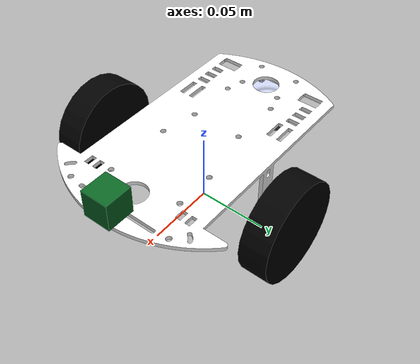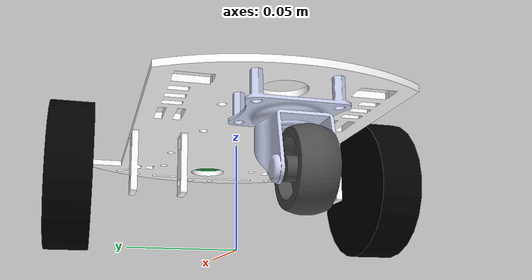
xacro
<?xml version="1.0"?>
<robot name="diffbot" xmlns:xacro="http://ros.org/wiki/xacro">

  <!-- Properties -->
  <!--All units in m-kg-s-radians unit system -->
  <!-- Constants for robot dimensions -->
  <xacro:property name="pi_2" value="${pi/2.0}" />
  <xacro:property name="deg_to_rad" value="0.017453293" />

  <!-- Main body height, length width and mass -->
  <!-- Main body box base -->
  <xacro:property name="base_height" value="0.01" />
  <xacro:property name="base_length" value="0.22" />
  <xacro:property name="base_width" value="0.11" />
  <xacro:property name="base_mass" value="0.8" /> <!-- in kg-->

  <!-- Wheel properties -->
  <!-- Wheel radius, width and mass -->
  <xacro:property name="wheel_radius" value="0.035" />
  <xacro:property name="wheel_width" value="0.02" />
  <xacro:property name="wheel_mass" value="0.5" /> <!-- in kg-->
  <!-- Wheel placement relative to base origin -->
  <xacro:property name="base_x_origin_to_wheel_origin" value="${base_length/2.0*0.15}" />
  <xacro:property name="base_y_origin_to_wheel_origin" value="${base_width/1.65}" />
  <xacro:property name="base_z_origin_to_wheel_origin" value="-0.02" />

  <!-- Caster wheel radius, width and mass -->
  <xacro:property name="caster_wheel_width" value="0.01" />
  <xacro:property name="caster_wheel_radius" value="0.015" />
  <xacro:property name="caster_wheel_mass" value="0.5" /> <!-- in kg-->

  <!-- Caster wheel base size, width and mass -->
  <xacro:property name="caster_wheel_dx" value="${-caster_base_size/2.0*0.8}" />
  <xacro:property name="caster_wheel_dy" value="-1" />
  <xacro:property name="caster_wheel_dz" value="${-caster_base_size}" />
  <!--xacro:property name="front_caster_wheel_base_dx" value="0.341346" /-->
  <xacro:property name="caster_base_mass" value="0.02" />
  <xacro:property name="caster_base_size" value="0.04" />
  <xacro:property name="back_caster_wheel_base_dx" value="${-base_length/2*0.69}" />
  <xacro:property name="caster_wheel_base_dy" value="0.203" />
  <xacro:property name="caster_wheel_base_dz" value="0.002" />

  <!-- Sensors -->
  <!-- Camera -->
  <xacro:property name="camera_size" value="0.02" /> <!-- Size of square 'camera' box -->
  <xacro:property name="camera_dx" value="${base_length/2.0*0.8}" />
  <xacro:property name="camera_dy" value="0.0" />
  <xacro:property name="camera_dz" value="${camera_size/2.0}" />
  <!-- Laser scanner -->
  <xacro:property name="lidar_size" value="0.05" />

  <!-- Import all Gazebo-customization elements, including Gazebo colors -->
  <xacro:include filename="$(find diffbot_description)/urdf/common_properties.urdf.xacro" />
  <xacro:include filename="$(find diffbot_description)/urdf/wheel.urdf.xacro" />
  <xacro:include filename="$(find diffbot_description)/urdf/caster_wheel.urdf.xacro" />
  <xacro:include filename="$(find diffbot_description)/urdf/diffbot_colors.gazebo.xacro" />
  <xacro:include filename="$(find diffbot_description)/urdf/diffbot.gazebo.xacro" />
  <xacro:include filename="$(find diffbot_description)/urdf/sensors.gazebo.xacro" />
  <!-- Import RViz colors -->
  <xacro:include filename="$(find diffbot_description)/urdf/materials.xacro" />

  <!-- Base-Footprint -->
  <!-- base_footprint is a fictitious link(frame) that is on the ground right below base_link origin -->
  <link name="base_footprint">
    <collision>
        <origin xyz="0 0 ${-base_z_origin_to_wheel_origin}" rpy="0 0 0" />
        <geometry>
            <box size="0.001 0.001 0.001" />
        </geometry>
    </collision>
  </link>

  <!-- Joint to connect base_footprint with base_link -->
  <joint name="base_footprint_joint" type="fixed">
    <origin xyz="0 0 ${wheel_radius - base_z_origin_to_wheel_origin}" rpy="0 0 0" />
    <parent link="base_footprint"/>
    <child link="base_link" />
  </joint>

  <!-- Base-Link -->
  <!-- Actual body/chassis of the robot-->
  <link name="base_link">
    <inertial>
      <mass value="${base_mass}" />
      <origin xyz="0 0 0" />
      <!--The 3x3 rotational inertia matrix. -->
      <xacro:box_inertia m="${base_mass}" l="${base_length}" w="${base_width}" h="${base_height}" />
    </inertial>
    <visual>
      <origin xyz="0 0 0" rpy="0 0 0" />
      <geometry>
          <!--box size="${base_length} ${base_width} ${base_height}" /-->
          <mesh filename="package://diffbot_description/meshes/chassis.stl" />
      </geometry>
      <material name="white" />
    </visual>
    <collision>
      <origin xyz="0 0 0" rpy="0 0 0" />
      <geometry>
          <box size="${base_length} ${base_width} ${base_height}" />
      </geometry>
    </collision>
  </link>

  <!-- Wheel definitions -->
  <xacro:wheel fb="front" lr="right" parent="base_link"
    mass="${wheel_mass}" radius="${wheel_radius}" width="${wheel_width}" reflect="-1"
    transX="${base_x_origin_to_wheel_origin}"
    transY="${base_y_origin_to_wheel_origin}"
    transZ="${base_z_origin_to_wheel_origin}"
    flipY="1" />
  <xacro:wheel fb="front" lr="left" parent="base_link"
    mass="${wheel_mass}" radius="${wheel_radius}" width="${wheel_width}" reflect="1"
    transX="${base_x_origin_to_wheel_origin}"
    transY="${base_y_origin_to_wheel_origin}"
    transZ="${base_z_origin_to_wheel_origin}"
    flipY="1" />

    <!-- Caster back  -->
    <!-- Joint between base_link and back caster wheel -->
    <xacro:caster_wheel locationprefix="back" locationright="0" wheel_base_dx="${back_caster_wheel_base_dx}" />

</robot>

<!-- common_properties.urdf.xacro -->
<!--
  Various useful properties such as constants and materials
 -->
<robot name="xacro_properties" xmlns:xacro="http://ros.org/wiki/xacro">
  <!-- #################### RViz materials #################### -->
  <xacro:property name="material_white">
    <material name="white">
      <color rgba="1 1 1 1"/>
    </material>
  </xacro:property>
  <xacro:property name="material_yellow">
    <material name="yellow">
      <color rgba="${255/255} ${226/255} ${0/255} 1"/>
    </material>
  </xacro:property>
  <xacro:property name="material_almost_white">
    <material name="almost_white">
      <color rgba="0.9 0.9 0.9 1" />
    </material>
  </xacro:property>
  <xacro:property name="material_grey">
    <material name="grey">
      <color rgba="0.5 0.5 0.5 1"/>
    </material>
  </xacro:property>
  <xacro:property name="material_light_grey">
    <material name="light_grey">
      <color rgba="0.6 0.6 0.6 1"/>
    </material>
  </xacro:property>
  <xacro:property name="material_dark_grey">
    <material name="dark_grey">
      <color rgba="0.3 0.3 0.3 1"/>
    </material>
  </xacro:property>
  <xacro:property name="material_black">
    <material name="black">
      <color rgba="0.1 0.1 0.1 1"/>
    </material>
  </xacro:property>
  <xacro:property name="material_aluminum">
    <material name="aluminum">
      <color rgba="0.8 0.8 0.8 1" />
    </material>
  </xacro:property>
  <xacro:property name="material_silver">
    <material name="silver">
      <color rgba="0.79 0.82 0.93 1" />
    </material>
  </xacro:property>

  <!-- #################### inertials with origin #################### -->
  <!-- Macro for calculating inertia of box, see https://en.wikipedia.org/wiki/List_of_moments_of_inertia -->
  <xacro:macro name="box_inertia" params="m l w h">
    <inertia  ixx="${m/12*(w*w + h*h)}" ixy = "0" ixz = "0"
              iyy="${m/12*(l*l + h*h)}" iyz = "0"
              izz="${m/12*(l*l + w*w)}" />
  </xacro:macro>

  <xacro:macro name="sphere_inertia" params="m r">
    <inertia  ixx="${m*2/5*r*r}" ixy = "0" ixz = "0"
              iyy="${m*2/5*r*r}" iyz = "0"
              izz="${m*2/5*r*r}" />
  </xacro:macro>

  <!-- see https://secure.wikimedia.org/wikipedia/en/wiki/List_of_moment_of_inertia_tensors -->
  <xacro:macro name="sphere_inertial" params="radius mass *origin">
    <inertial>
      <mass value="${mass}" />
      <xacro:insert_block name="origin" />
      <inertia ixx="${0.4 * mass * radius * radius}" ixy="0.0" ixz="0.0"
        iyy="${0.4 * mass * radius * radius}" iyz="0.0"
        izz="${0.4 * mass * radius * radius}" />
    </inertial>
  </xacro:macro>

  <xacro:macro name="cylinder_inertial" params="radius length mass *origin">
    <inertial>
      <mass value="${mass}" />
      <xacro:insert_block name="origin" />
      <inertia ixx="${0.0833333 * mass * (3 * radius * radius + length * length)}" ixy="0.0" ixz="0.0"
        iyy="${0.0833333 * mass * (3 * radius * radius + length * length)}" iyz="0.0"
        izz="${0.5 * mass * radius * radius}" />
    </inertial>
  </xacro:macro>

  <xacro:macro name="box_inertial" params="x y z mass *origin">
    <inertial>
      <mass value="${mass}" />
      <xacro:insert_block name="origin" />
      <inertia ixx="${0.0833333 * mass * (y*y + z*z)}" ixy="0.0" ixz="0.0"
        iyy="${0.0833333 * mass * (x*x + z*z)}" iyz="0.0"
        izz="${0.0833333 * mass * (x*x + y*y)}" />
    </inertial>
  </xacro:macro>
</robot>

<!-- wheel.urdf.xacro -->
<robot name="wheel" xmlns:xacro="http://www.ros.org/wiki/xacro">

  <xacro:macro name="cylinder_inertia" params="m r h">
    <inertia  ixx="${m/12*(3*r*r+h*h)}" ixy = "0" ixz = "0"
              iyy="${m/2*(r*r)}" iyz = "0"
              izz="${m/12*(3*r*r+h*h)}" />
  </xacro:macro>

  <!--fb : front, back ; lr: left, right -->
  <xacro:macro name="wheel" params="fb lr
      parent:=base_link
      mass:=${wheel_mass}
      radius:=${wheel_radius}
      width:=${wheel_width}
      reflect:=${1}
      transX:=${0.0}
      transY:=seperation
      transZ:=${wheel_radius}
      flipY:=${1}">
    <link name="${fb}_${lr}_wheel">
      <visual>
        <origin xyz="0 0 0" rpy="${flipY*pi_2} 0 0 " />
        <geometry>
          <cylinder length="${width}" radius="${radius}" />
        </geometry>
        <material name="black" />
      </visual>
      <collision>
        <origin xyz="0 0 0" rpy="${flipY*pi_2} 0 0 " />
        <geometry>
          <cylinder length="${width}" radius="${radius}" />
        </geometry>
      </collision>
      <inertial>
        <mass value="${mass}" />
        <!--origin xyz="0 0 0" /-->
        <xacro:cylinder_inertia  m="${mass}" r="${radius}" h="${width}" />
      </inertial>
    </link>

    <gazebo reference="${fb}_${lr}_wheel">
      <mu1 value="200.0"/>
      <mu2 value="100.0"/>
      <kp  value="10000000.0" />
      <kd  value="1.0" />
      <fdir1 value="1 0 0"/>
      <material>Gazebo/Grey</material>
      <turnGravityOff>false</turnGravityOff>
    </gazebo>

    <joint name="${fb}_${lr}_wheel_joint" type="continuous">
      <parent link="${parent}"/>
      <child link="${fb}_${lr}_wheel"/>
      <origin xyz="${transX} ${reflect * (transY + wheel_width/2.0)} ${transZ}" rpy="0 0 0" />
      <axis xyz="0 1 0" rpy="0 0 0" />
      <limit effort="100" velocity="100"/>
      <joint_properties damping="0.0" friction="0.0"/>
    </joint>

    <!-- Transmission is important to link the joints and the controller -->
    <transmission name="${fb}_${lr}_wheel_joint_trans">
      <type>transmission_interface/SimpleTransmission</type>
      <joint name="${fb}_${lr}_wheel_joint">
        <hardwareInterface>hardware_interface/VelocityJointInterface</hardwareInterface>
      </joint>
      <actuator name="${fb}_${lr}_wheel_joint_motor">
        <hardwareInterface>hardware_interface/VelocityJointInterface</hardwareInterface>
        <mechanicalReduction>1</mechanicalReduction>
      </actuator>
    </transmission>

  </xacro:macro>
</robot>

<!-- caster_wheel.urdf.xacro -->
<robot name="caster_wheel" xmlns:xacro="http://www.ros.org/wiki/xacro">
    <!-- caster base (fixed) -->
    <xacro:macro name="caster_wheel" params="locationprefix locationright wheel_base_dx
        flipY:=${1}">
        <link name="${locationprefix}_caster_base_link">
            <inertial>
                <origin xyz="0 0 ${-caster_base_size/2.0}" rpy="0 0 0" />
                <mass value="${caster_base_mass}" />
                <xacro:box_inertia  m="${caster_base_mass}" l="${caster_base_size}" w="${caster_base_size}" h="${caster_base_size}" />
            </inertial>
            <visual>
                <origin xyz="0 0 ${-caster_base_size/2.0}" rpy="0 0 0" />
                <geometry>
                    <mesh filename="package://diffbot_description/meshes/caster_base.stl" />
                    <box size="${caster_base_size} ${caster_base_size} ${caster_base_size}" />
                </geometry>
                <xacro:insert_block name="material_silver" />
            </visual>
            <collision>
                <origin xyz="0 0 ${-caster_base_size/2.0}" rpy="0 0 0" />
                <geometry>
                    <!--mesh filename="package://mir_description/meshes/collision/caster_wheel_base.stl" /-->
                    <box size="${caster_base_size} ${caster_base_size} ${caster_base_size}" />
                </geometry>
            </collision>
        </link>
        <joint name="${locationprefix}_caster_base_joint" type="fixed">
            <origin xyz="${wheel_base_dx} ${-caster_wheel_base_dy * locationright} ${caster_wheel_base_dz}" rpy="0 0 0" />
            <parent link="base_link" />
            <child link="${locationprefix}_caster_base_link" />
            <axis xyz="0 0 1" />
            <dynamics damping="0.01" friction="0.0"/>
        </joint>
        <gazebo reference="${locationprefix}_caster_base_link">
            <material>Gazebo/Grey</material>
        </gazebo>

        <!-- caster hub -->
        <link name="${locationprefix}_caster_rotation_link">
            <inertial>
                <origin xyz="0 0 ${-caster_base_size/2.0}" rpy="0 0 0" />
                <mass value="${caster_base_mass}" />
                <xacro:box_inertia  m="${caster_base_mass}" l="${caster_base_size}" w="${caster_base_size}" h="${caster_base_size}" />
            </inertial>
            <visual>
                <origin xyz="0 0 ${-caster_base_size/2.0}" rpy="0 0 0" />
                <geometry>
                    <mesh filename="package://diffbot_description/meshes/caster_wheel_support.stl" />
                    <!--box size="${caster_base_size} ${caster_base_size} ${caster_base_size}" /-->
                </geometry>
                <xacro:insert_block name="material_silver" />
            </visual>
            <collision>
                <origin xyz="0 0 ${-caster_base_size/2.0}" rpy="0 0 0" />
                <geometry>
                    <!--mesh filename="package://mir_description/meshes/collision/caster_wheel_base.stl" /-->
                    <box size="${caster_base_size} ${caster_base_size} ${caster_base_size}" />
                </geometry>
            </collision>
        </link>
        <joint name="${locationprefix}_caster_rotation_joint" type="continuous">
            <origin xyz="${wheel_base_dx} ${-caster_wheel_base_dy * locationright} ${caster_wheel_base_dz}" rpy="0 0 0" />
            <parent link="base_link" />
            <child link="${locationprefix}_caster_rotation_link" />
            <axis xyz="0 0 1" />
            <dynamics damping="0.01" friction="0.0"/>
        </joint>
        <gazebo reference="${locationprefix}_caster_rotation_link">
            <material>Gazebo/Grey</material>
        </gazebo>

        <!-- caster wheel -->
        <link name="${locationprefix}_caster_wheel_link">
            <xacro:cylinder_inertial mass="${caster_wheel_mass}" radius="${caster_wheel_radius}" length="${caster_wheel_width}">
                <origin xyz="0 0 0" rpy="${pi_2} 0 0" />
            </xacro:cylinder_inertial>
            <visual>
                <origin xyz="0 0 0" rpy="0 0 0" />
                <geometry>
                    <mesh filename="package://diffbot_description/meshes/caster_wheel.stl" />
                    <!--cylinder length="${caster_wheel_width}" radius="${caster_wheel_radius}" /-->
                </geometry>
                <xacro:insert_block name="material_dark_grey" />
            </visual>
            <collision>
                <origin xyz="0 0 0" rpy="${flipY*pi_2} 0 0" />
                <geometry>
                    <!--mesh filename="package://diffbot_description/meshes/wheel.stl" -->
                    <cylinder length="${caster_wheel_width}" radius="${caster_wheel_radius}" />
                </geometry>
            </collision>
        </link>
        <joint name="${locationprefix}_caster_wheel_joint" type="continuous">
            <origin xyz="${caster_wheel_dx} ${-caster_wheel_dy * locationright} ${caster_wheel_dz}" rpy="0 0 0" />
            <parent link="${locationprefix}_caster_rotation_link" />
            <child link="${locationprefix}_caster_wheel_link" />
            <axis xyz="0 1 0" />
        </joint>
        <gazebo reference="${locationprefix}_caster_wheel_link">
            <material>Gazebo/DarkGrey</material>
        </gazebo>
    </xacro:macro>
</robot>

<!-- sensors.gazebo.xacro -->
<robot name="sensors" xmlns:xacro="http://www.ros.org/wiki/xacro">

  <!-- Camera -->
  <joint name="camera_joint" type="fixed">
    <axis xyz="0 1 0" />
    <origin xyz="${camera_dx} ${camera_dy} ${camera_dz}" rpy="0 0 0"/>
    <parent link="base_link"/>
    <child link="camera_link"/>
  </joint>

  <link name="camera_link">
    <collision>
      <origin xyz="0 0 0" rpy="0 0 0"/>
      <geometry>
    <box size="${camera_size} ${camera_size} ${camera_size}"/>
      </geometry>
    </collision>
    <visual>
      <origin xyz="0 0 0" rpy="0 0 0"/>
      <geometry>
        <box size="${camera_size} ${camera_size} ${camera_size}"/>
      </geometry>
      <material name="green" />
    </visual>
    <inertial>
      <mass value="1e-5" />
      <origin xyz="0 0 0" rpy="0 0 0"/>
      <inertia ixx="1e-6" ixy="0" ixz="0" iyy="1e-6" iyz="0" izz="1e-6" />
    </inertial>
  </link>

  <!-- camera -->
  <gazebo reference="camera_link">
    <sensor type="camera" name="camera1">
      <update_rate>30.0</update_rate>
      <camera name="head">
        <horizontal_fov>1.3962634</horizontal_fov>
        <image>
          <width>800</width>
          <height>800</height>
          <format>R8G8B8</format>
        </image>
        <clip>
          <near>0.02</near>
          <far>300</far>
        </clip>
        <noise>
          <type>gaussian</type>
          <!-- Noise is sampled independently per pixel on each frame.
              That pixel's noise value is added to each of its color
              channels, which at that point lie in the range [0,1]. -->
          <mean>0.0</mean>
          <stddev>0.007</stddev>
        </noise>
      </camera>
      <plugin name="camera_controller" filename="libgazebo_ros_camera.so">
        <alwaysOn>true</alwaysOn>
        <updateRate>0.0</updateRate>
        <cameraName>diffbot/camera1</cameraName>
        <imageTopicName>image_raw</imageTopicName>
        <cameraInfoTopicName>camera_info</cameraInfoTopicName>
        <frameName>camera_link</frameName>
        <hackBaseline>0.07</hackBaseline>
        <distortionK1>0.0</distortionK1>
        <distortionK2>0.0</distortionK2>
        <distortionK3>0.0</distortionK3>
        <distortionT1>0.0</distortionT1>
        <distortionT2>0.0</distortionT2>
      </plugin>
    </sensor>
  </gazebo>

</robot>

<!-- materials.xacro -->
<robot>

  <!-- Defining the colors used in this robot -->
  <material name="black">
    <color rgba="0.0 0.0 0.0 1.0"/>
  </material>

  <material name="red">
    <color rgba="0.8 0.0 0.0 1.0"/>
  </material>

  <material name="yellow">
    <color rgba="0.9 0.7 0.1 1.0"/>
  </material>

  <material name="white">
    <color rgba="1.0 1.0 1.0 1.0"/>
  </material>

  <material name="blue">
    <color rgba="0.0 0.0 0.8 1.0"/>
  </material>

  <material name="green">
    <color rgba="0.04 0.4 0.14 1.0"/>
  </material>

</robot>
